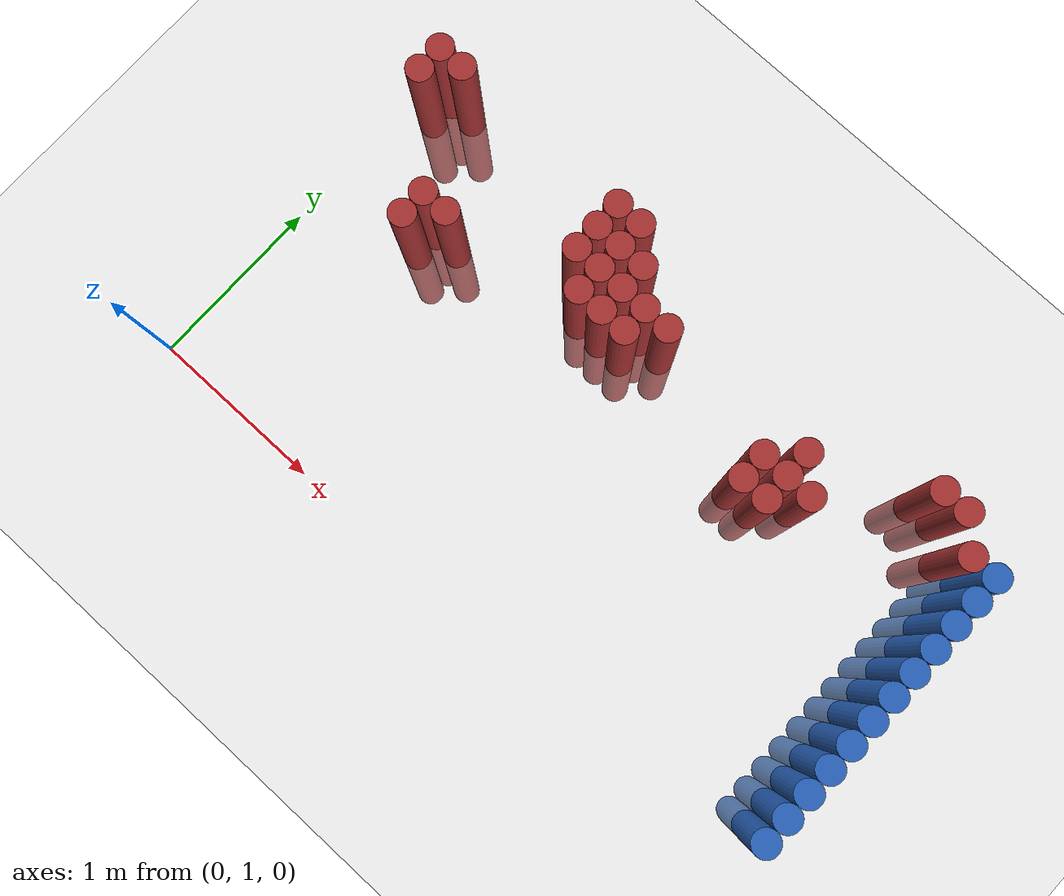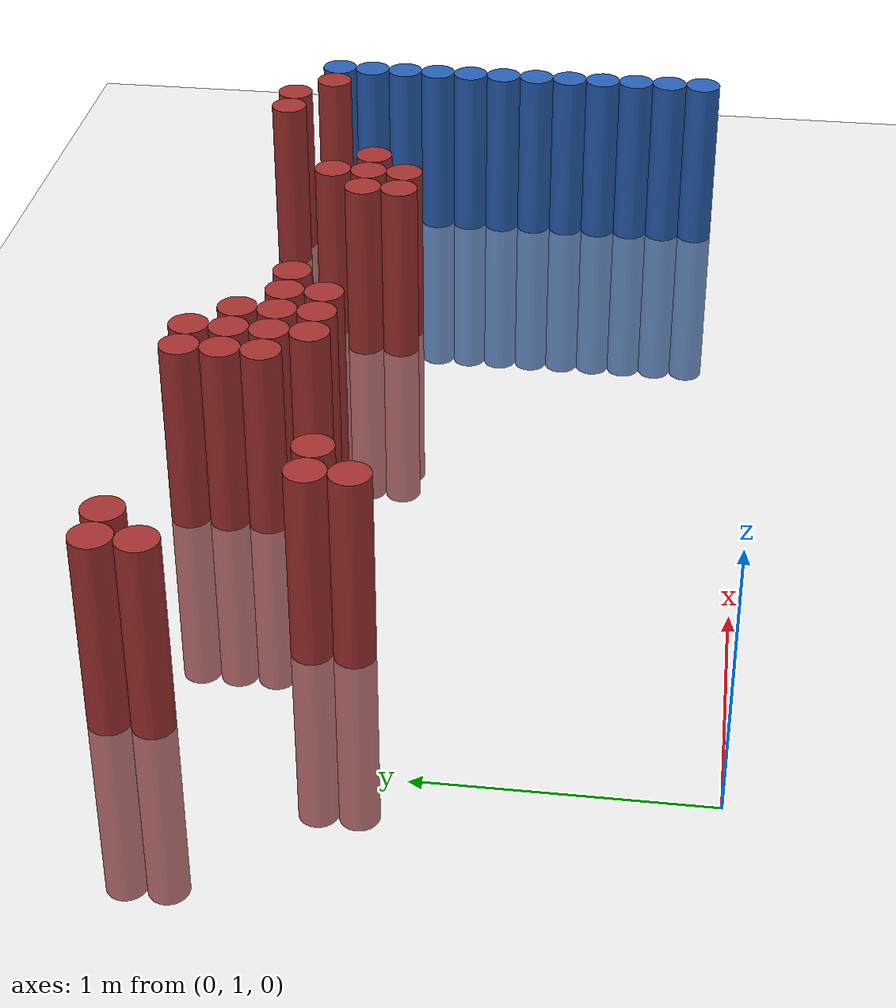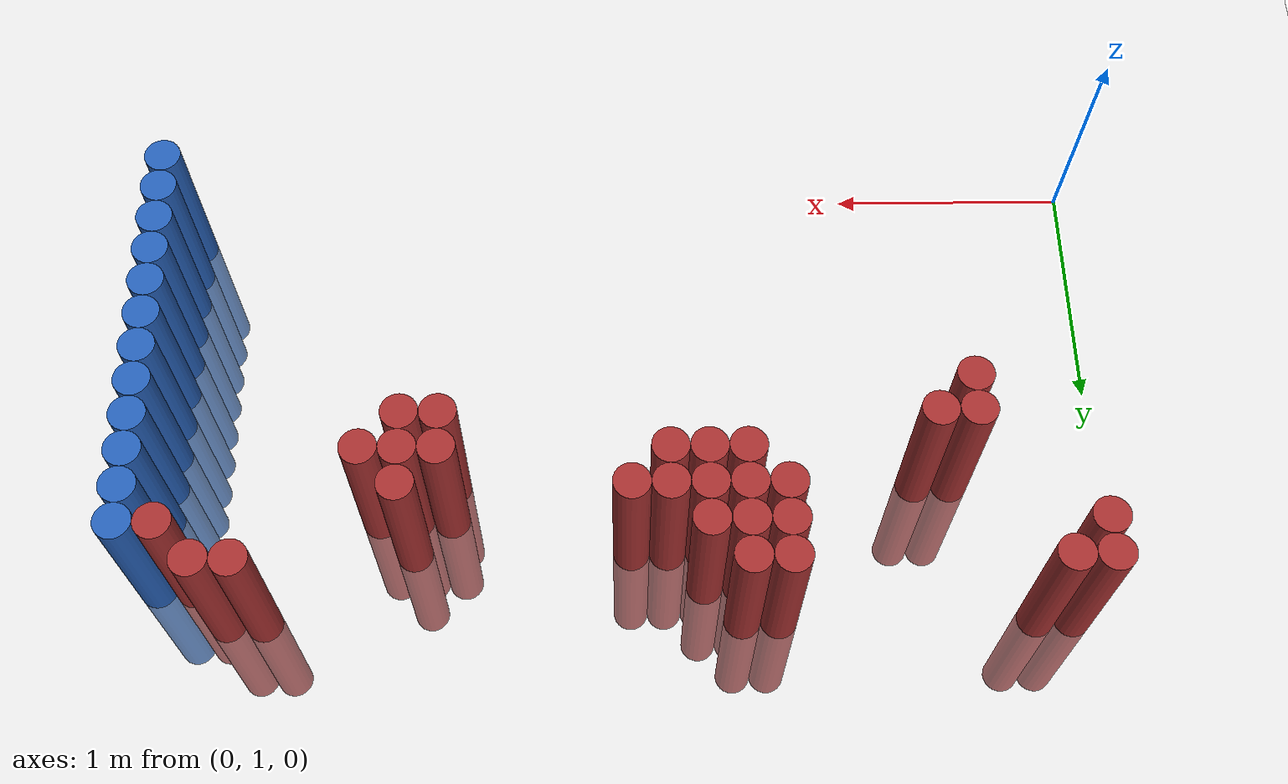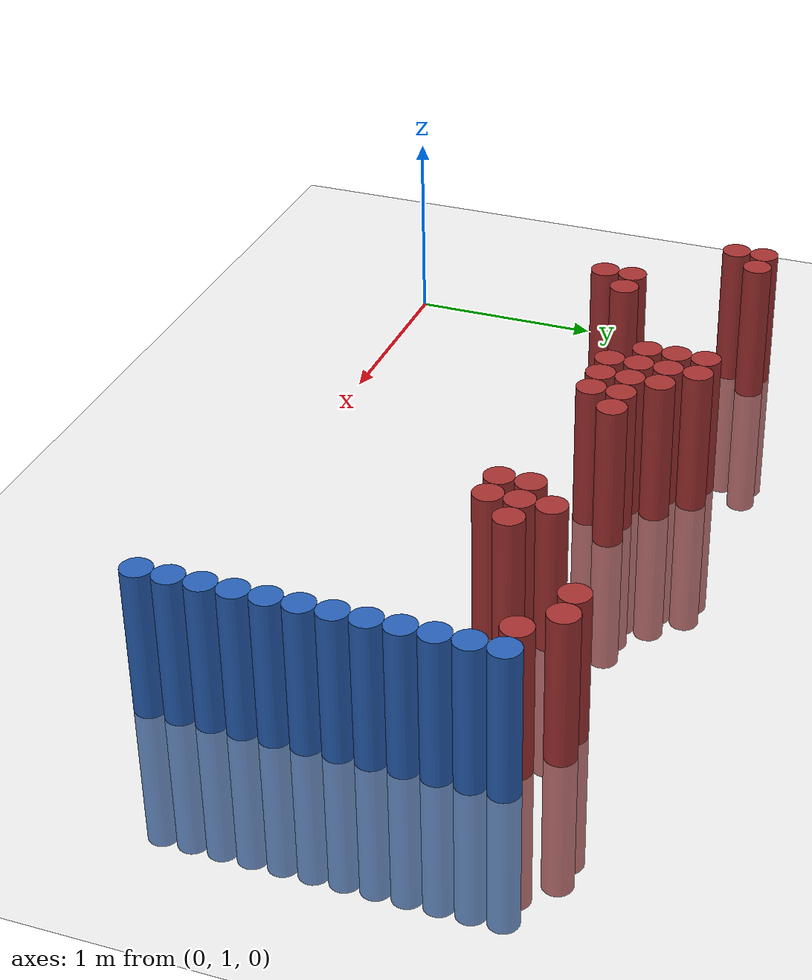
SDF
<sdf version="1.6">
 <world name="default">
  <model name="ground_plane">
   <static>1</static>
   <link name="link">
    <collision name="collision">
     <geometry><plane><normal>0 0 1</normal><size>100 100</size></plane></geometry>
     <surface><friction><ode><mu>100</mu><mu2>50</mu2></ode></friction></surface>
    </collision>
    <visual name="visual">
     <cast_shadows>0</cast_shadows>
     <geometry><plane><normal>0 0 1</normal><size>100 100</size></plane></geometry>
     <material>
      <script><uri>file://media/materials/scripts/gazebo.material</uri><name>Gazebo/Grey</name></script>
     </material>
    </visual>
   </link>
  </model>
  <model name="unit_cylinder_132">
   <static>1</static>
   <pose>3.925000 1.375000 0.000000 0.000000 0.000000 0.000000</pose>
   <link name="link">
    <inertial>
     <mass>1</mass>
     <inertia><ixx>0.145833</ixx><ixy>0</ixy><ixz>0</ixz><iyy>0.145833</iyy><iyz>0</iyz><izz>0.125</izz></inertia>
    </inertial>
    <collision name="collision">
     <geometry><cylinder><radius>0.075000</radius><length>1.5</length></cylinder></geometry>
    </collision>
    <visual name="visual">
     <geometry><cylinder><radius>0.075000</radius><length>1.5</length></cylinder></geometry>
     <material>
      <ambient>0.152000 0.379000 0.720000 1</ambient>
      <diffuse>0.152000 0.379000 0.720000 1</diffuse>
     </material>
     <material>
      <script><name>Gazebo/Grey</name><uri>file://media/materials/scripts/gazebo.material</uri></script>
     </material>
    </visual>
   </link>
  </model>
  <model name="unit_cylinder_134">
   <static>1</static>
   <pose>3.925000 1.525000 0.000000 0.000000 0.000000 0.000000</pose>
   <link name="link">
    <inertial>
     <mass>1</mass>
     <inertia><ixx>0.145833</ixx><ixy>0</ixy><ixz>0</ixz><iyy>0.145833</iyy><iyz>0</iyz><izz>0.125</izz></inertia>
    </inertial>
    <collision name="collision">
     <geometry><cylinder><radius>0.075000</radius><length>1.5</length></cylinder></geometry>
    </collision>
    <visual name="visual">
     <geometry><cylinder><radius>0.075000</radius><length>1.5</length></cylinder></geometry>
     <material>
      <ambient>0.152000 0.379000 0.720000 1</ambient>
      <diffuse>0.152000 0.379000 0.720000 1</diffuse>
     </material>
     <material>
      <script><name>Gazebo/Grey</name><uri>file://media/materials/scripts/gazebo.material</uri></script>
     </material>
    </visual>
   </link>
  </model>
  <model name="unit_cylinder_136">
   <static>1</static>
   <pose>3.925000 1.675000 0.000000 0.000000 0.000000 0.000000</pose>
   <link name="link">
    <inertial>
     <mass>1</mass>
     <inertia><ixx>0.145833</ixx><ixy>0</ixy><ixz>0</ixz><iyy>0.145833</iyy><iyz>0</iyz><izz>0.125</izz></inertia>
    </inertial>
    <collision name="collision">
     <geometry><cylinder><radius>0.075000</radius><length>1.5</length></cylinder></geometry>
    </collision>
    <visual name="visual">
     <geometry><cylinder><radius>0.075000</radius><length>1.5</length></cylinder></geometry>
     <material>
      <ambient>0.152000 0.379000 0.720000 1</ambient>
      <diffuse>0.152000 0.379000 0.720000 1</diffuse>
     </material>
     <material>
      <script><name>Gazebo/Grey</name><uri>file://media/materials/scripts/gazebo.material</uri></script>
     </material>
    </visual>
   </link>
  </model>
  <model name="unit_cylinder_138">
   <static>1</static>
   <pose>3.925000 1.825000 0.000000 0.000000 0.000000 0.000000</pose>
   <link name="link">
    <inertial>
     <mass>1</mass>
     <inertia><ixx>0.145833</ixx><ixy>0</ixy><ixz>0</ixz><iyy>0.145833</iyy><iyz>0</iyz><izz>0.125</izz></inertia>
    </inertial>
    <collision name="collision">
     <geometry><cylinder><radius>0.075000</radius><length>1.5</length></cylinder></geometry>
    </collision>
    <visual name="visual">
     <geometry><cylinder><radius>0.075000</radius><length>1.5</length></cylinder></geometry>
     <material>
      <ambient>0.152000 0.379000 0.720000 1</ambient>
      <diffuse>0.152000 0.379000 0.720000 1</diffuse>
     </material>
     <material>
      <script><name>Gazebo/Grey</name><uri>file://media/materials/scripts/gazebo.material</uri></script>
     </material>
    </visual>
   </link>
  </model>
  <model name="unit_cylinder_140">
   <static>1</static>
   <pose>3.925000 1.975000 0.000000 0.000000 0.000000 0.000000</pose>
   <link name="link">
    <inertial>
     <mass>1</mass>
     <inertia><ixx>0.145833</ixx><ixy>0</ixy><ixz>0</ixz><iyy>0.145833</iyy><iyz>0</iyz><izz>0.125</izz></inertia>
    </inertial>
    <collision name="collision">
     <geometry><cylinder><radius>0.075000</radius><length>1.5</length></cylinder></geometry>
    </collision>
    <visual name="visual">
     <geometry><cylinder><radius>0.075000</radius><length>1.5</length></cylinder></geometry>
     <material>
      <ambient>0.152000 0.379000 0.720000 1</ambient>
      <diffuse>0.152000 0.379000 0.720000 1</diffuse>
     </material>
     <material>
      <script><name>Gazebo/Grey</name><uri>file://media/materials/scripts/gazebo.material</uri></script>
     </material>
    </visual>
   </link>
  </model>
  <model name="unit_cylinder_142">
   <static>1</static>
   <pose>3.925000 2.125000 0.000000 0.000000 0.000000 0.000000</pose>
   <link name="link">
    <inertial>
     <mass>1</mass>
     <inertia><ixx>0.145833</ixx><ixy>0</ixy><ixz>0</ixz><iyy>0.145833</iyy><iyz>0</iyz><izz>0.125</izz></inertia>
    </inertial>
    <collision name="collision">
     <geometry><cylinder><radius>0.075000</radius><length>1.5</length></cylinder></geometry>
    </collision>
    <visual name="visual">
     <geometry><cylinder><radius>0.075000</radius><length>1.5</length></cylinder></geometry>
     <material>
      <ambient>0.152000 0.379000 0.720000 1</ambient>
      <diffuse>0.152000 0.379000 0.720000 1</diffuse>
     </material>
     <material>
      <script><name>Gazebo/Grey</name><uri>file://media/materials/scripts/gazebo.material</uri></script>
     </material>
    </visual>
   </link>
  </model>
  <model name="unit_cylinder_144">
   <static>1</static>
   <pose>3.925000 2.275000 0.000000 0.000000 0.000000 0.000000</pose>
   <link name="link">
    <inertial>
     <mass>1</mass>
     <inertia><ixx>0.145833</ixx><ixy>0</ixy><ixz>0</ixz><iyy>0.145833</iyy><iyz>0</iyz><izz>0.125</izz></inertia>
    </inertial>
    <collision name="collision">
     <geometry><cylinder><radius>0.075000</radius><length>1.5</length></cylinder></geometry>
    </collision>
    <visual name="visual">
     <geometry><cylinder><radius>0.075000</radius><length>1.5</length></cylinder></geometry>
     <material>
      <ambient>0.152000 0.379000 0.720000 1</ambient>
      <diffuse>0.152000 0.379000 0.720000 1</diffuse>
     </material>
     <material>
      <script><name>Gazebo/Grey</name><uri>file://media/materials/scripts/gazebo.material</uri></script>
     </material>
    </visual>
   </link>
  </model>
  <model name="unit_cylinder_146">
   <static>1</static>
   <pose>3.925000 2.425000 0.000000 0.000000 0.000000 0.000000</pose>
   <link name="link">
    <inertial>
     <mass>1</mass>
     <inertia><ixx>0.145833</ixx><ixy>0</ixy><ixz>0</ixz><iyy>0.145833</iyy><iyz>0</iyz><izz>0.125</izz></inertia>
    </inertial>
    <collision name="collision">
     <geometry><cylinder><radius>0.075000</radius><length>1.5</length></cylinder></geometry>
    </collision>
    <visual name="visual">
     <geometry><cylinder><radius>0.075000</radius><length>1.5</length></cylinder></geometry>
     <material>
      <ambient>0.152000 0.379000 0.720000 1</ambient>
      <diffuse>0.152000 0.379000 0.720000 1</diffuse>
     </material>
     <material>
      <script><name>Gazebo/Grey</name><uri>file://media/materials/scripts/gazebo.material</uri></script>
     </material>
    </visual>
   </link>
  </model>
  <model name="unit_cylinder_148">
   <static>1</static>
   <pose>3.925000 2.575000 0.000000 0.000000 0.000000 0.000000</pose>
   <link name="link">
    <inertial>
     <mass>1</mass>
     <inertia><ixx>0.145833</ixx><ixy>0</ixy><ixz>0</ixz><iyy>0.145833</iyy><iyz>0</iyz><izz>0.125</izz></inertia>
    </inertial>
    <collision name="collision">
     <geometry><cylinder><radius>0.075000</radius><length>1.5</length></cylinder></geometry>
    </collision>
    <visual name="visual">
     <geometry><cylinder><radius>0.075000</radius><length>1.5</length></cylinder></geometry>
     <material>
      <ambient>0.152000 0.379000 0.720000 1</ambient>
      <diffuse>0.152000 0.379000 0.720000 1</diffuse>
     </material>
     <material>
      <script><name>Gazebo/Grey</name><uri>file://media/materials/scripts/gazebo.material</uri></script>
     </material>
    </visual>
   </link>
  </model>
  <model name="unit_cylinder_150">
   <static>1</static>
   <pose>3.925000 2.725000 0.000000 0.000000 0.000000 0.000000</pose>
   <link name="link">
    <inertial>
     <mass>1</mass>
     <inertia><ixx>0.145833</ixx><ixy>0</ixy><ixz>0</ixz><iyy>0.145833</iyy><iyz>0</iyz><izz>0.125</izz></inertia>
    </inertial>
    <collision name="collision">
     <geometry><cylinder><radius>0.075000</radius><length>1.5</length></cylinder></geometry>
    </collision>
    <visual name="visual">
     <geometry><cylinder><radius>0.075000</radius><length>1.5</length></cylinder></geometry>
     <material>
      <ambient>0.152000 0.379000 0.720000 1</ambient>
      <diffuse>0.152000 0.379000 0.720000 1</diffuse>
     </material>
     <material>
      <script><name>Gazebo/Grey</name><uri>file://media/materials/scripts/gazebo.material</uri></script>
     </material>
    </visual>
   </link>
  </model>
  <model name="unit_cylinder_152">
   <static>1</static>
   <pose>3.925000 2.875000 0.000000 0.000000 0.000000 0.000000</pose>
   <link name="link">
    <inertial>
     <mass>1</mass>
     <inertia><ixx>0.145833</ixx><ixy>0</ixy><ixz>0</ixz><iyy>0.145833</iyy><iyz>0</iyz><izz>0.125</izz></inertia>
    </inertial>
    <collision name="collision">
     <geometry><cylinder><radius>0.075000</radius><length>1.5</length></cylinder></geometry>
    </collision>
    <visual name="visual">
     <geometry><cylinder><radius>0.075000</radius><length>1.5</length></cylinder></geometry>
     <material>
      <ambient>0.152000 0.379000 0.720000 1</ambient>
      <diffuse>0.152000 0.379000 0.720000 1</diffuse>
     </material>
     <material>
      <script><name>Gazebo/Grey</name><uri>file://media/materials/scripts/gazebo.material</uri></script>
     </material>
    </visual>
   </link>
  </model>
  <model name="unit_cylinder_352">
   <static>1</static>
   <pose>0.175000 2.875000 0.000000 0.000000 0.000000 0.000000</pose>
   <link name="link">
    <inertial>
     <mass>1</mass>
     <inertia><ixx>0.145833</ixx><ixy>0</ixy><ixz>0</ixz><iyy>0.145833</iyy><iyz>0</iyz><izz>0.125</izz></inertia>
    </inertial>
    <collision name="collision">
     <geometry><cylinder><radius>0.075000</radius><length>1.5</length></cylinder></geometry>
    </collision>
    <visual name="visual">
     <geometry><cylinder><radius>0.075000</radius><length>1.5</length></cylinder></geometry>
     <material>
      <ambient>0.648000 0.192000 0.192000 1</ambient>
      <diffuse>0.648000 0.192000 0.192000 1</diffuse>
     </material>
     <material>
      <script><name>Gazebo/Grey</name><uri>file://media/materials/scripts/gazebo.material</uri></script>
     </material>
    </visual>
   </link>
  </model>
  <model name="unit_cylinder_353">
   <static>1</static>
   <pose>0.175000 3.025000 0.000000 0.000000 0.000000 0.000000</pose>
   <link name="link">
    <inertial>
     <mass>1</mass>
     <inertia><ixx>0.145833</ixx><ixy>0</ixy><ixz>0</ixz><iyy>0.145833</iyy><iyz>0</iyz><izz>0.125</izz></inertia>
    </inertial>
    <collision name="collision">
     <geometry><cylinder><radius>0.075000</radius><length>1.5</length></cylinder></geometry>
    </collision>
    <visual name="visual">
     <geometry><cylinder><radius>0.075000</radius><length>1.5</length></cylinder></geometry>
     <material>
      <ambient>0.648000 0.192000 0.192000 1</ambient>
      <diffuse>0.648000 0.192000 0.192000 1</diffuse>
     </material>
     <material>
      <script><name>Gazebo/Grey</name><uri>file://media/materials/scripts/gazebo.material</uri></script>
     </material>
    </visual>
   </link>
  </model>
  <model name="unit_cylinder_358">
   <static>1</static>
   <pose>0.325000 3.025000 0.000000 0.000000 0.000000 0.000000</pose>
   <link name="link">
    <inertial>
     <mass>1</mass>
     <inertia><ixx>0.145833</ixx><ixy>0</ixy><ixz>0</ixz><iyy>0.145833</iyy><iyz>0</iyz><izz>0.125</izz></inertia>
    </inertial>
    <collision name="collision">
     <geometry><cylinder><radius>0.075000</radius><length>1.5</length></cylinder></geometry>
    </collision>
    <visual name="visual">
     <geometry><cylinder><radius>0.075000</radius><length>1.5</length></cylinder></geometry>
     <material>
      <ambient>0.648000 0.192000 0.192000 1</ambient>
      <diffuse>0.648000 0.192000 0.192000 1</diffuse>
     </material>
     <material>
      <script><name>Gazebo/Grey</name><uri>file://media/materials/scripts/gazebo.material</uri></script>
     </material>
    </visual>
   </link>
  </model>
  <model name="unit_cylinder_364">
   <static>1</static>
   <pose>0.625000 2.275000 0.000000 0.000000 0.000000 0.000000</pose>
   <link name="link">
    <inertial>
     <mass>1</mass>
     <inertia><ixx>0.145833</ixx><ixy>0</ixy><ixz>0</ixz><iyy>0.145833</iyy><iyz>0</iyz><izz>0.125</izz></inertia>
    </inertial>
    <collision name="collision">
     <geometry><cylinder><radius>0.075000</radius><length>1.5</length></cylinder></geometry>
    </collision>
    <visual name="visual">
     <geometry><cylinder><radius>0.075000</radius><length>1.5</length></cylinder></geometry>
     <material>
      <ambient>0.648000 0.192000 0.192000 1</ambient>
      <diffuse>0.648000 0.192000 0.192000 1</diffuse>
     </material>
     <material>
      <script><name>Gazebo/Grey</name><uri>file://media/materials/scripts/gazebo.material</uri></script>
     </material>
    </visual>
   </link>
  </model>
  <model name="unit_cylinder_365">
   <static>1</static>
   <pose>0.625000 2.425000 0.000000 0.000000 0.000000 0.000000</pose>
   <link name="link">
    <inertial>
     <mass>1</mass>
     <inertia><ixx>0.145833</ixx><ixy>0</ixy><ixz>0</ixz><iyy>0.145833</iyy><iyz>0</iyz><izz>0.125</izz></inertia>
    </inertial>
    <collision name="collision">
     <geometry><cylinder><radius>0.075000</radius><length>1.5</length></cylinder></geometry>
    </collision>
    <visual name="visual">
     <geometry><cylinder><radius>0.075000</radius><length>1.5</length></cylinder></geometry>
     <material>
      <ambient>0.648000 0.192000 0.192000 1</ambient>
      <diffuse>0.648000 0.192000 0.192000 1</diffuse>
     </material>
     <material>
      <script><name>Gazebo/Grey</name><uri>file://media/materials/scripts/gazebo.material</uri></script>
     </material>
    </visual>
   </link>
  </model>
  <model name="unit_cylinder_366">
   <static>1</static>
   <pose>0.775000 2.425000 0.000000 0.000000 0.000000 0.000000</pose>
   <link name="link">
    <inertial>
     <mass>1</mass>
     <inertia><ixx>0.145833</ixx><ixy>0</ixy><ixz>0</ixz><iyy>0.145833</iyy><iyz>0</iyz><izz>0.125</izz></inertia>
    </inertial>
    <collision name="collision">
     <geometry><cylinder><radius>0.075000</radius><length>1.5</length></cylinder></geometry>
    </collision>
    <visual name="visual">
     <geometry><cylinder><radius>0.075000</radius><length>1.5</length></cylinder></geometry>
     <material>
      <ambient>0.648000 0.192000 0.192000 1</ambient>
      <diffuse>0.648000 0.192000 0.192000 1</diffuse>
     </material>
     <material>
      <script><name>Gazebo/Grey</name><uri>file://media/materials/scripts/gazebo.material</uri></script>
     </material>
    </visual>
   </link>
  </model>
  <model name="unit_cylinder_377">
   <static>1</static>
   <pose>1.375000 2.725000 0.000000 0.000000 0.000000 0.000000</pose>
   <link name="link">
    <inertial>
     <mass>1</mass>
     <inertia><ixx>0.145833</ixx><ixy>0</ixy><ixz>0</ixz><iyy>0.145833</iyy><iyz>0</iyz><izz>0.125</izz></inertia>
    </inertial>
    <collision name="collision">
     <geometry><cylinder><radius>0.075000</radius><length>1.5</length></cylinder></geometry>
    </collision>
    <visual name="visual">
     <geometry><cylinder><radius>0.075000</radius><length>1.5</length></cylinder></geometry>
     <material>
      <ambient>0.648000 0.192000 0.192000 1</ambient>
      <diffuse>0.648000 0.192000 0.192000 1</diffuse>
     </material>
     <material>
      <script><name>Gazebo/Grey</name><uri>file://media/materials/scripts/gazebo.material</uri></script>
     </material>
    </visual>
   </link>
  </model>
  <model name="unit_cylinder_378">
   <static>1</static>
   <pose>1.375000 2.875000 0.000000 0.000000 0.000000 0.000000</pose>
   <link name="link">
    <inertial>
     <mass>1</mass>
     <inertia><ixx>0.145833</ixx><ixy>0</ixy><ixz>0</ixz><iyy>0.145833</iyy><iyz>0</iyz><izz>0.125</izz></inertia>
    </inertial>
    <collision name="collision">
     <geometry><cylinder><radius>0.075000</radius><length>1.5</length></cylinder></geometry>
    </collision>
    <visual name="visual">
     <geometry><cylinder><radius>0.075000</radius><length>1.5</length></cylinder></geometry>
     <material>
      <ambient>0.648000 0.192000 0.192000 1</ambient>
      <diffuse>0.648000 0.192000 0.192000 1</diffuse>
     </material>
     <material>
      <script><name>Gazebo/Grey</name><uri>file://media/materials/scripts/gazebo.material</uri></script>
     </material>
    </visual>
   </link>
  </model>
  <model name="unit_cylinder_379">
   <static>1</static>
   <pose>1.375000 3.025000 0.000000 0.000000 0.000000 0.000000</pose>
   <link name="link">
    <inertial>
     <mass>1</mass>
     <inertia><ixx>0.145833</ixx><ixy>0</ixy><ixz>0</ixz><iyy>0.145833</iyy><iyz>0</iyz><izz>0.125</izz></inertia>
    </inertial>
    <collision name="collision">
     <geometry><cylinder><radius>0.075000</radius><length>1.5</length></cylinder></geometry>
    </collision>
    <visual name="visual">
     <geometry><cylinder><radius>0.075000</radius><length>1.5</length></cylinder></geometry>
     <material>
      <ambient>0.648000 0.192000 0.192000 1</ambient>
      <diffuse>0.648000 0.192000 0.192000 1</diffuse>
     </material>
     <material>
      <script><name>Gazebo/Grey</name><uri>file://media/materials/scripts/gazebo.material</uri></script>
     </material>
    </visual>
   </link>
  </model>
  <model name="unit_cylinder_382">
   <static>1</static>
   <pose>1.525000 2.575000 0.000000 0.000000 0.000000 0.000000</pose>
   <link name="link">
    <inertial>
     <mass>1</mass>
     <inertia><ixx>0.145833</ixx><ixy>0</ixy><ixz>0</ixz><iyy>0.145833</iyy><iyz>0</iyz><izz>0.125</izz></inertia>
    </inertial>
    <collision name="collision">
     <geometry><cylinder><radius>0.075000</radius><length>1.5</length></cylinder></geometry>
    </collision>
    <visual name="visual">
     <geometry><cylinder><radius>0.075000</radius><length>1.5</length></cylinder></geometry>
     <material>
      <ambient>0.648000 0.192000 0.192000 1</ambient>
      <diffuse>0.648000 0.192000 0.192000 1</diffuse>
     </material>
     <material>
      <script><name>Gazebo/Grey</name><uri>file://media/materials/scripts/gazebo.material</uri></script>
     </material>
    </visual>
   </link>
  </model>
  <model name="unit_cylinder_383">
   <static>1</static>
   <pose>1.525000 2.725000 0.000000 0.000000 0.000000 0.000000</pose>
   <link name="link">
    <inertial>
     <mass>1</mass>
     <inertia><ixx>0.145833</ixx><ixy>0</ixy><ixz>0</ixz><iyy>0.145833</iyy><iyz>0</iyz><izz>0.125</izz></inertia>
    </inertial>
    <collision name="collision">
     <geometry><cylinder><radius>0.075000</radius><length>1.5</length></cylinder></geometry>
    </collision>
    <visual name="visual">
     <geometry><cylinder><radius>0.075000</radius><length>1.5</length></cylinder></geometry>
     <material>
      <ambient>0.648000 0.192000 0.192000 1</ambient>
      <diffuse>0.648000 0.192000 0.192000 1</diffuse>
     </material>
     <material>
      <script><name>Gazebo/Grey</name><uri>file://media/materials/scripts/gazebo.material</uri></script>
     </material>
    </visual>
   </link>
  </model>
  <model name="unit_cylinder_384">
   <static>1</static>
   <pose>1.525000 2.875000 0.000000 0.000000 0.000000 0.000000</pose>
   <link name="link">
    <inertial>
     <mass>1</mass>
     <inertia><ixx>0.145833</ixx><ixy>0</ixy><ixz>0</ixz><iyy>0.145833</iyy><iyz>0</iyz><izz>0.125</izz></inertia>
    </inertial>
    <collision name="collision">
     <geometry><cylinder><radius>0.075000</radius><length>1.5</length></cylinder></geometry>
    </collision>
    <visual name="visual">
     <geometry><cylinder><radius>0.075000</radius><length>1.5</length></cylinder></geometry>
     <material>
      <ambient>0.648000 0.192000 0.192000 1</ambient>
      <diffuse>0.648000 0.192000 0.192000 1</diffuse>
     </material>
     <material>
      <script><name>Gazebo/Grey</name><uri>file://media/materials/scripts/gazebo.material</uri></script>
     </material>
    </visual>
   </link>
  </model>
  <model name="unit_cylinder_385">
   <static>1</static>
   <pose>1.525000 3.025000 0.000000 0.000000 0.000000 0.000000</pose>
   <link name="link">
    <inertial>
     <mass>1</mass>
     <inertia><ixx>0.145833</ixx><ixy>0</ixy><ixz>0</ixz><iyy>0.145833</iyy><iyz>0</iyz><izz>0.125</izz></inertia>
    </inertial>
    <collision name="collision">
     <geometry><cylinder><radius>0.075000</radius><length>1.5</length></cylinder></geometry>
    </collision>
    <visual name="visual">
     <geometry><cylinder><radius>0.075000</radius><length>1.5</length></cylinder></geometry>
     <material>
      <ambient>0.648000 0.192000 0.192000 1</ambient>
      <diffuse>0.648000 0.192000 0.192000 1</diffuse>
     </material>
     <material>
      <script><name>Gazebo/Grey</name><uri>file://media/materials/scripts/gazebo.material</uri></script>
     </material>
    </visual>
   </link>
  </model>
  <model name="unit_cylinder_386">
   <static>1</static>
   <pose>1.675000 2.575000 0.000000 0.000000 0.000000 0.000000</pose>
   <link name="link">
    <inertial>
     <mass>1</mass>
     <inertia><ixx>0.145833</ixx><ixy>0</ixy><ixz>0</ixz><iyy>0.145833</iyy><iyz>0</iyz><izz>0.125</izz></inertia>
    </inertial>
    <collision name="collision">
     <geometry><cylinder><radius>0.075000</radius><length>1.5</length></cylinder></geometry>
    </collision>
    <visual name="visual">
     <geometry><cylinder><radius>0.075000</radius><length>1.5</length></cylinder></geometry>
     <material>
      <ambient>0.648000 0.192000 0.192000 1</ambient>
      <diffuse>0.648000 0.192000 0.192000 1</diffuse>
     </material>
     <material>
      <script><name>Gazebo/Grey</name><uri>file://media/materials/scripts/gazebo.material</uri></script>
     </material>
    </visual>
   </link>
  </model>
  <model name="unit_cylinder_387">
   <static>1</static>
   <pose>1.675000 2.725000 0.000000 0.000000 0.000000 0.000000</pose>
   <link name="link">
    <inertial>
     <mass>1</mass>
     <inertia><ixx>0.145833</ixx><ixy>0</ixy><ixz>0</ixz><iyy>0.145833</iyy><iyz>0</iyz><izz>0.125</izz></inertia>
    </inertial>
    <collision name="collision">
     <geometry><cylinder><radius>0.075000</radius><length>1.5</length></cylinder></geometry>
    </collision>
    <visual name="visual">
     <geometry><cylinder><radius>0.075000</radius><length>1.5</length></cylinder></geometry>
     <material>
      <ambient>0.648000 0.192000 0.192000 1</ambient>
      <diffuse>0.648000 0.192000 0.192000 1</diffuse>
     </material>
     <material>
      <script><name>Gazebo/Grey</name><uri>file://media/materials/scripts/gazebo.material</uri></script>
     </material>
    </visual>
   </link>
  </model>
  <model name="unit_cylinder_388">
   <static>1</static>
   <pose>1.675000 2.875000 0.000000 0.000000 0.000000 0.000000</pose>
   <link name="link">
    <inertial>
     <mass>1</mass>
     <inertia><ixx>0.145833</ixx><ixy>0</ixy><ixz>0</ixz><iyy>0.145833</iyy><iyz>0</iyz><izz>0.125</izz></inertia>
    </inertial>
    <collision name="collision">
     <geometry><cylinder><radius>0.075000</radius><length>1.5</length></cylinder></geometry>
    </collision>
    <visual name="visual">
     <geometry><cylinder><radius>0.075000</radius><length>1.5</length></cylinder></geometry>
     <material>
      <ambient>0.648000 0.192000 0.192000 1</ambient>
      <diffuse>0.648000 0.192000 0.192000 1</diffuse>
     </material>
     <material>
      <script><name>Gazebo/Grey</name><uri>file://media/materials/scripts/gazebo.material</uri></script>
     </material>
    </visual>
   </link>
  </model>
  <model name="unit_cylinder_397">
   <static>1</static>
   <pose>1.825000 2.575000 0.000000 0.000000 0.000000 0.000000</pose>
   <link name="link">
    <inertial>
     <mass>1</mass>
     <inertia><ixx>0.145833</ixx><ixy>0</ixy><ixz>0</ixz><iyy>0.145833</iyy><iyz>0</iyz><izz>0.125</izz></inertia>
    </inertial>
    <collision name="collision">
     <geometry><cylinder><radius>0.075000</radius><length>1.5</length></cylinder></geometry>
    </collision>
    <visual name="visual">
     <geometry><cylinder><radius>0.075000</radius><length>1.5</length></cylinder></geometry>
     <material>
      <ambient>0.648000 0.192000 0.192000 1</ambient>
      <diffuse>0.648000 0.192000 0.192000 1</diffuse>
     </material>
     <material>
      <script><name>Gazebo/Grey</name><uri>file://media/materials/scripts/gazebo.material</uri></script>
     </material>
    </visual>
   </link>
  </model>
  <model name="unit_cylinder_398">
   <static>1</static>
   <pose>1.825000 2.725000 0.000000 0.000000 0.000000 0.000000</pose>
   <link name="link">
    <inertial>
     <mass>1</mass>
     <inertia><ixx>0.145833</ixx><ixy>0</ixy><ixz>0</ixz><iyy>0.145833</iyy><iyz>0</iyz><izz>0.125</izz></inertia>
    </inertial>
    <collision name="collision">
     <geometry><cylinder><radius>0.075000</radius><length>1.5</length></cylinder></geometry>
    </collision>
    <visual name="visual">
     <geometry><cylinder><radius>0.075000</radius><length>1.5</length></cylinder></geometry>
     <material>
      <ambient>0.648000 0.192000 0.192000 1</ambient>
      <diffuse>0.648000 0.192000 0.192000 1</diffuse>
     </material>
     <material>
      <script><name>Gazebo/Grey</name><uri>file://media/materials/scripts/gazebo.material</uri></script>
     </material>
    </visual>
   </link>
  </model>
  <model name="unit_cylinder_408">
   <static>1</static>
   <pose>1.975000 2.725000 0.000000 0.000000 0.000000 0.000000</pose>
   <link name="link">
    <inertial>
     <mass>1</mass>
     <inertia><ixx>0.145833</ixx><ixy>0</ixy><ixz>0</ixz><iyy>0.145833</iyy><iyz>0</iyz><izz>0.125</izz></inertia>
    </inertial>
    <collision name="collision">
     <geometry><cylinder><radius>0.075000</radius><length>1.5</length></cylinder></geometry>
    </collision>
    <visual name="visual">
     <geometry><cylinder><radius>0.075000</radius><length>1.5</length></cylinder></geometry>
     <material>
      <ambient>0.648000 0.192000 0.192000 1</ambient>
      <diffuse>0.648000 0.192000 0.192000 1</diffuse>
     </material>
     <material>
      <script><name>Gazebo/Grey</name><uri>file://media/materials/scripts/gazebo.material</uri></script>
     </material>
    </visual>
   </link>
  </model>
  <model name="unit_cylinder_425">
   <static>1</static>
   <pose>2.725000 2.425000 0.000000 0.000000 0.000000 0.000000</pose>
   <link name="link">
    <inertial>
     <mass>1</mass>
     <inertia><ixx>0.145833</ixx><ixy>0</ixy><ixz>0</ixz><iyy>0.145833</iyy><iyz>0</iyz><izz>0.125</izz></inertia>
    </inertial>
    <collision name="collision">
     <geometry><cylinder><radius>0.075000</radius><length>1.5</length></cylinder></geometry>
    </collision>
    <visual name="visual">
     <geometry><cylinder><radius>0.075000</radius><length>1.5</length></cylinder></geometry>
     <material>
      <ambient>0.648000 0.192000 0.192000 1</ambient>
      <diffuse>0.648000 0.192000 0.192000 1</diffuse>
     </material>
     <material>
      <script><name>Gazebo/Grey</name><uri>file://media/materials/scripts/gazebo.material</uri></script>
     </material>
    </visual>
   </link>
  </model>
  <model name="unit_cylinder_426">
   <static>1</static>
   <pose>2.725000 2.575000 0.000000 0.000000 0.000000 0.000000</pose>
   <link name="link">
    <inertial>
     <mass>1</mass>
     <inertia><ixx>0.145833</ixx><ixy>0</ixy><ixz>0</ixz><iyy>0.145833</iyy><iyz>0</iyz><izz>0.125</izz></inertia>
    </inertial>
    <collision name="collision">
     <geometry><cylinder><radius>0.075000</radius><length>1.5</length></cylinder></geometry>
    </collision>
    <visual name="visual">
     <geometry><cylinder><radius>0.075000</radius><length>1.5</length></cylinder></geometry>
     <material>
      <ambient>0.648000 0.192000 0.192000 1</ambient>
      <diffuse>0.648000 0.192000 0.192000 1</diffuse>
     </material>
     <material>
      <script><name>Gazebo/Grey</name><uri>file://media/materials/scripts/gazebo.material</uri></script>
     </material>
    </visual>
   </link>
  </model>
  <model name="unit_cylinder_429">
   <static>1</static>
   <pose>2.875000 2.425000 0.000000 0.000000 0.000000 0.000000</pose>
   <link name="link">
    <inertial>
     <mass>1</mass>
     <inertia><ixx>0.145833</ixx><ixy>0</ixy><ixz>0</ixz><iyy>0.145833</iyy><iyz>0</iyz><izz>0.125</izz></inertia>
    </inertial>
    <collision name="collision">
     <geometry><cylinder><radius>0.075000</radius><length>1.5</length></cylinder></geometry>
    </collision>
    <visual name="visual">
     <geometry><cylinder><radius>0.075000</radius><length>1.5</length></cylinder></geometry>
     <material>
      <ambient>0.648000 0.192000 0.192000 1</ambient>
      <diffuse>0.648000 0.192000 0.192000 1</diffuse>
     </material>
     <material>
      <script><name>Gazebo/Grey</name><uri>file://media/materials/scripts/gazebo.material</uri></script>
     </material>
    </visual>
   </link>
  </model>
  <model name="unit_cylinder_430">
   <static>1</static>
   <pose>2.875000 2.575000 0.000000 0.000000 0.000000 0.000000</pose>
   <link name="link">
    <inertial>
     <mass>1</mass>
     <inertia><ixx>0.145833</ixx><ixy>0</ixy><ixz>0</ixz><iyy>0.145833</iyy><iyz>0</iyz><izz>0.125</izz></inertia>
    </inertial>
    <collision name="collision">
     <geometry><cylinder><radius>0.075000</radius><length>1.5</length></cylinder></geometry>
    </collision>
    <visual name="visual">
     <geometry><cylinder><radius>0.075000</radius><length>1.5</length></cylinder></geometry>
     <material>
      <ambient>0.648000 0.192000 0.192000 1</ambient>
      <diffuse>0.648000 0.192000 0.192000 1</diffuse>
     </material>
     <material>
      <script><name>Gazebo/Grey</name><uri>file://media/materials/scripts/gazebo.material</uri></script>
     </material>
    </visual>
   </link>
  </model>
  <model name="unit_cylinder_431">
   <static>1</static>
   <pose>2.875000 2.725000 0.000000 0.000000 0.000000 0.000000</pose>
   <link name="link">
    <inertial>
     <mass>1</mass>
     <inertia><ixx>0.145833</ixx><ixy>0</ixy><ixz>0</ixz><iyy>0.145833</iyy><iyz>0</iyz><izz>0.125</izz></inertia>
    </inertial>
    <collision name="collision">
     <geometry><cylinder><radius>0.075000</radius><length>1.5</length></cylinder></geometry>
    </collision>
    <visual name="visual">
     <geometry><cylinder><radius>0.075000</radius><length>1.5</length></cylinder></geometry>
     <material>
      <ambient>0.648000 0.192000 0.192000 1</ambient>
      <diffuse>0.648000 0.192000 0.192000 1</diffuse>
     </material>
     <material>
      <script><name>Gazebo/Grey</name><uri>file://media/materials/scripts/gazebo.material</uri></script>
     </material>
    </visual>
   </link>
  </model>
  <model name="unit_cylinder_436">
   <static>1</static>
   <pose>3.025000 2.575000 0.000000 0.000000 0.000000 0.000000</pose>
   <link name="link">
    <inertial>
     <mass>1</mass>
     <inertia><ixx>0.145833</ixx><ixy>0</ixy><ixz>0</ixz><iyy>0.145833</iyy><iyz>0</iyz><izz>0.125</izz></inertia>
    </inertial>
    <collision name="collision">
     <geometry><cylinder><radius>0.075000</radius><length>1.5</length></cylinder></geometry>
    </collision>
    <visual name="visual">
     <geometry><cylinder><radius>0.075000</radius><length>1.5</length></cylinder></geometry>
     <material>
      <ambient>0.648000 0.192000 0.192000 1</ambient>
      <diffuse>0.648000 0.192000 0.192000 1</diffuse>
     </material>
     <material>
      <script><name>Gazebo/Grey</name><uri>file://media/materials/scripts/gazebo.material</uri></script>
     </material>
    </visual>
   </link>
  </model>
  <model name="unit_cylinder_442">
   <static>1</static>
   <pose>3.475000 3.025000 0.000000 0.000000 0.000000 0.000000</pose>
   <link name="link">
    <inertial>
     <mass>1</mass>
     <inertia><ixx>0.145833</ixx><ixy>0</ixy><ixz>0</ixz><iyy>0.145833</iyy><iyz>0</iyz><izz>0.125</izz></inertia>
    </inertial>
    <collision name="collision">
     <geometry><cylinder><radius>0.075000</radius><length>1.5</length></cylinder></geometry>
    </collision>
    <visual name="visual">
     <geometry><cylinder><radius>0.075000</radius><length>1.5</length></cylinder></geometry>
     <material>
      <ambient>0.648000 0.192000 0.192000 1</ambient>
      <diffuse>0.648000 0.192000 0.192000 1</diffuse>
     </material>
     <material>
      <script><name>Gazebo/Grey</name><uri>file://media/materials/scripts/gazebo.material</uri></script>
     </material>
    </visual>
   </link>
  </model>
  <model name="unit_cylinder_447">
   <static>1</static>
   <pose>3.625000 3.025000 0.000000 0.000000 0.000000 0.000000</pose>
   <link name="link">
    <inertial>
     <mass>1</mass>
     <inertia><ixx>0.145833</ixx><ixy>0</ixy><ixz>0</ixz><iyy>0.145833</iyy><iyz>0</iyz><izz>0.125</izz></inertia>
    </inertial>
    <collision name="collision">
     <geometry><cylinder><radius>0.075000</radius><length>1.5</length></cylinder></geometry>
    </collision>
    <visual name="visual">
     <geometry><cylinder><radius>0.075000</radius><length>1.5</length></cylinder></geometry>
     <material>
      <ambient>0.648000 0.192000 0.192000 1</ambient>
      <diffuse>0.648000 0.192000 0.192000 1</diffuse>
     </material>
     <material>
      <script><name>Gazebo/Grey</name><uri>file://media/materials/scripts/gazebo.material</uri></script>
     </material>
    </visual>
   </link>
  </model>
  <model name="unit_cylinder_453">
   <static>1</static>
   <pose>3.775000 2.875000 0.000000 0.000000 0.000000 0.000000</pose>
   <link name="link">
    <inertial>
     <mass>1</mass>
     <inertia><ixx>0.145833</ixx><ixy>0</ixy><ixz>0</ixz><iyy>0.145833</iyy><iyz>0</iyz><izz>0.125</izz></inertia>
    </inertial>
    <collision name="collision">
     <geometry><cylinder><radius>0.075000</radius><length>1.5</length></cylinder></geometry>
    </collision>
    <visual name="visual">
     <geometry><cylinder><radius>0.075000</radius><length>1.5</length></cylinder></geometry>
     <material>
      <ambient>0.648000 0.192000 0.192000 1</ambient>
      <diffuse>0.648000 0.192000 0.192000 1</diffuse>
     </material>
     <material>
      <script><name>Gazebo/Grey</name><uri>file://media/materials/scripts/gazebo.material</uri></script>
     </material>
    </visual>
   </link>
  </model>
  <model name="unit_cylinder_481">
   <static>1</static>
   <pose>3.925000 1.225000 0.000000 0.000000 0.000000 0.000000</pose>
   <link name="link">
    <inertial>
     <mass>1</mass>
     <inertia><ixx>0.145833</ixx><ixy>0</ixy><ixz>0</ixz><iyy>0.145833</iyy><iyz>0</iyz><izz>0.125</izz></inertia>
    </inertial>
    <collision name="collision">
     <geometry><cylinder><radius>0.075000</radius><length>1.5</length></cylinder></geometry>
    </collision>
    <visual name="visual">
     <geometry><cylinder><radius>0.075000</radius><length>1.5</length></cylinder></geometry>
     <material>
      <ambient>0.152000 0.379000 0.720000 1</ambient>
      <diffuse>0.152000 0.379000 0.720000 1</diffuse>
     </material>
     <material>
      <script><name>Gazebo/Grey</name><uri>file://media/materials/scripts/gazebo.material</uri></script>
     </material>
    </visual>
   </link>
  </model>
  <model name="unit_cylinder_482">
   <static>1</static>
   <pose>3.925000 1.375000 0.000000 0.000000 0.000000 0.000000</pose>
   <link name="link">
    <inertial>
     <mass>1</mass>
     <inertia><ixx>0.145833</ixx><ixy>0</ixy><ixz>0</ixz><iyy>0.145833</iyy><iyz>0</iyz><izz>0.125</izz></inertia>
    </inertial>
    <collision name="collision">
     <geometry><cylinder><radius>0.075000</radius><length>1.5</length></cylinder></geometry>
    </collision>
    <visual name="visual">
     <geometry><cylinder><radius>0.075000</radius><length>1.5</length></cylinder></geometry>
     <material>
      <ambient>0.152000 0.379000 0.720000 1</ambient>
      <diffuse>0.152000 0.379000 0.720000 1</diffuse>
     </material>
     <material>
      <script><name>Gazebo/Grey</name><uri>file://media/materials/scripts/gazebo.material</uri></script>
     </material>
    </visual>
   </link>
  </model>
  <model name="unit_cylinder_483">
   <static>1</static>
   <pose>3.925000 1.525000 0.000000 0.000000 0.000000 0.000000</pose>
   <link name="link">
    <inertial>
     <mass>1</mass>
     <inertia><ixx>0.145833</ixx><ixy>0</ixy><ixz>0</ixz><iyy>0.145833</iyy><iyz>0</iyz><izz>0.125</izz></inertia>
    </inertial>
    <collision name="collision">
     <geometry><cylinder><radius>0.075000</radius><length>1.5</length></cylinder></geometry>
    </collision>
    <visual name="visual">
     <geometry><cylinder><radius>0.075000</radius><length>1.5</length></cylinder></geometry>
     <material>
      <ambient>0.152000 0.379000 0.720000 1</ambient>
      <diffuse>0.152000 0.379000 0.720000 1</diffuse>
     </material>
     <material>
      <script><name>Gazebo/Grey</name><uri>file://media/materials/scripts/gazebo.material</uri></script>
     </material>
    </visual>
   </link>
  </model>
  <model name="unit_cylinder_484">
   <static>1</static>
   <pose>3.925000 1.675000 0.000000 0.000000 0.000000 0.000000</pose>
   <link name="link">
    <inertial>
     <mass>1</mass>
     <inertia><ixx>0.145833</ixx><ixy>0</ixy><ixz>0</ixz><iyy>0.145833</iyy><iyz>0</iyz><izz>0.125</izz></inertia>
    </inertial>
    <collision name="collision">
     <geometry><cylinder><radius>0.075000</radius><length>1.5</length></cylinder></geometry>
    </collision>
    <visual name="visual">
     <geometry><cylinder><radius>0.075000</radius><length>1.5</length></cylinder></geometry>
     <material>
      <ambient>0.152000 0.379000 0.720000 1</ambient>
      <diffuse>0.152000 0.379000 0.720000 1</diffuse>
     </material>
     <material>
      <script><name>Gazebo/Grey</name><uri>file://media/materials/scripts/gazebo.material</uri></script>
     </material>
    </visual>
   </link>
  </model>
  <model name="unit_cylinder_485">
   <static>1</static>
   <pose>3.925000 1.825000 0.000000 0.000000 0.000000 0.000000</pose>
   <link name="link">
    <inertial>
     <mass>1</mass>
     <inertia><ixx>0.145833</ixx><ixy>0</ixy><ixz>0</ixz><iyy>0.145833</iyy><iyz>0</iyz><izz>0.125</izz></inertia>
    </inertial>
    <collision name="collision">
     <geometry><cylinder><radius>0.075000</radius><length>1.5</length></cylinder></geometry>
    </collision>
    <visual name="visual">
     <geometry><cylinder><radius>0.075000</radius><length>1.5</length></cylinder></geometry>
     <material>
      <ambient>0.152000 0.379000 0.720000 1</ambient>
      <diffuse>0.152000 0.379000 0.720000 1</diffuse>
     </material>
     <material>
      <script><name>Gazebo/Grey</name><uri>file://media/materials/scripts/gazebo.material</uri></script>
     </material>
    </visual>
   </link>
  </model>
  <model name="unit_cylinder_486">
   <static>1</static>
   <pose>3.925000 1.975000 0.000000 0.000000 0.000000 0.000000</pose>
   <link name="link">
    <inertial>
     <mass>1</mass>
     <inertia><ixx>0.145833</ixx><ixy>0</ixy><ixz>0</ixz><iyy>0.145833</iyy><iyz>0</iyz><izz>0.125</izz></inertia>
    </inertial>
    <collision name="collision">
     <geometry><cylinder><radius>0.075000</radius><length>1.5</length></cylinder></geometry>
    </collision>
    <visual name="visual">
     <geometry><cylinder><radius>0.075000</radius><length>1.5</length></cylinder></geometry>
     <material>
      <ambient>0.152000 0.379000 0.720000 1</ambient>
      <diffuse>0.152000 0.379000 0.720000 1</diffuse>
     </material>
     <material>
      <script><name>Gazebo/Grey</name><uri>file://media/materials/scripts/gazebo.material</uri></script>
     </material>
    </visual>
   </link>
  </model>
  <model name="unit_cylinder_487">
   <static>1</static>
   <pose>3.925000 2.125000 0.000000 0.000000 0.000000 0.000000</pose>
   <link name="link">
    <inertial>
     <mass>1</mass>
     <inertia><ixx>0.145833</ixx><ixy>0</ixy><ixz>0</ixz><iyy>0.145833</iyy><iyz>0</iyz><izz>0.125</izz></inertia>
    </inertial>
    <collision name="collision">
     <geometry><cylinder><radius>0.075000</radius><length>1.5</length></cylinder></geometry>
    </collision>
    <visual name="visual">
     <geometry><cylinder><radius>0.075000</radius><length>1.5</length></cylinder></geometry>
     <material>
      <ambient>0.152000 0.379000 0.720000 1</ambient>
      <diffuse>0.152000 0.379000 0.720000 1</diffuse>
     </material>
     <material>
      <script><name>Gazebo/Grey</name><uri>file://media/materials/scripts/gazebo.material</uri></script>
     </material>
    </visual>
   </link>
  </model>
  <model name="unit_cylinder_488">
   <static>1</static>
   <pose>3.925000 2.275000 0.000000 0.000000 0.000000 0.000000</pose>
   <link name="link">
    <inertial>
     <mass>1</mass>
     <inertia><ixx>0.145833</ixx><ixy>0</ixy><ixz>0</ixz><iyy>0.145833</iyy><iyz>0</iyz><izz>0.125</izz></inertia>
    </inertial>
    <collision name="collision">
     <geometry><cylinder><radius>0.075000</radius><length>1.5</length></cylinder></geometry>
    </collision>
    <visual name="visual">
     <geometry><cylinder><radius>0.075000</radius><length>1.5</length></cylinder></geometry>
     <material>
      <ambient>0.152000 0.379000 0.720000 1</ambient>
      <diffuse>0.152000 0.379000 0.720000 1</diffuse>
     </material>
     <material>
      <script><name>Gazebo/Grey</name><uri>file://media/materials/scripts/gazebo.material</uri></script>
     </material>
    </visual>
   </link>
  </model>
  <model name="unit_cylinder_489">
   <static>1</static>
   <pose>3.925000 2.425000 0.000000 0.000000 0.000000 0.000000</pose>
   <link name="link">
    <inertial>
     <mass>1</mass>
     <inertia><ixx>0.145833</ixx><ixy>0</ixy><ixz>0</ixz><iyy>0.145833</iyy><iyz>0</iyz><izz>0.125</izz></inertia>
    </inertial>
    <collision name="collision">
     <geometry><cylinder><radius>0.075000</radius><length>1.5</length></cylinder></geometry>
    </collision>
    <visual name="visual">
     <geometry><cylinder><radius>0.075000</radius><length>1.5</length></cylinder></geometry>
     <material>
      <ambient>0.152000 0.379000 0.720000 1</ambient>
      <diffuse>0.152000 0.379000 0.720000 1</diffuse>
     </material>
     <material>
      <script><name>Gazebo/Grey</name><uri>file://media/materials/scripts/gazebo.material</uri></script>
     </material>
    </visual>
   </link>
  </model>
  <model name="unit_cylinder_490">
   <static>1</static>
   <pose>3.925000 2.575000 0.000000 0.000000 0.000000 0.000000</pose>
   <link name="link">
    <inertial>
     <mass>1</mass>
     <inertia><ixx>0.145833</ixx><ixy>0</ixy><ixz>0</ixz><iyy>0.145833</iyy><iyz>0</iyz><izz>0.125</izz></inertia>
    </inertial>
    <collision name="collision">
     <geometry><cylinder><radius>0.075000</radius><length>1.5</length></cylinder></geometry>
    </collision>
    <visual name="visual">
     <geometry><cylinder><radius>0.075000</radius><length>1.5</length></cylinder></geometry>
     <material>
      <ambient>0.152000 0.379000 0.720000 1</ambient>
      <diffuse>0.152000 0.379000 0.720000 1</diffuse>
     </material>
     <material>
      <script><name>Gazebo/Grey</name><uri>file://media/materials/scripts/gazebo.material</uri></script>
     </material>
    </visual>
   </link>
  </model>
  <model name="unit_cylinder_491">
   <static>1</static>
   <pose>3.925000 2.725000 0.000000 0.000000 0.000000 0.000000</pose>
   <link name="link">
    <inertial>
     <mass>1</mass>
     <inertia><ixx>0.145833</ixx><ixy>0</ixy><ixz>0</ixz><iyy>0.145833</iyy><iyz>0</iyz><izz>0.125</izz></inertia>
    </inertial>
    <collision name="collision">
     <geometry><cylinder><radius>0.075000</radius><length>1.5</length></cylinder></geometry>
    </collision>
    <visual name="visual">
     <geometry><cylinder><radius>0.075000</radius><length>1.5</length></cylinder></geometry>
     <material>
      <ambient>0.152000 0.379000 0.720000 1</ambient>
      <diffuse>0.152000 0.379000 0.720000 1</diffuse>
     </material>
     <material>
      <script><name>Gazebo/Grey</name><uri>file://media/materials/scripts/gazebo.material</uri></script>
     </material>
    </visual>
   </link>
  </model>
  <model name="unit_cylinder_492">
   <static>1</static>
   <pose>3.925000 2.875000 0.000000 0.000000 0.000000 0.000000</pose>
   <link name="link">
    <inertial>
     <mass>1</mass>
     <inertia><ixx>0.145833</ixx><ixy>0</ixy><ixz>0</ixz><iyy>0.145833</iyy><iyz>0</iyz><izz>0.125</izz></inertia>
    </inertial>
    <collision name="collision">
     <geometry><cylinder><radius>0.075000</radius><length>1.5</length></cylinder></geometry>
    </collision>
    <visual name="visual">
     <geometry><cylinder><radius>0.075000</radius><length>1.5</length></cylinder></geometry>
     <material>
      <ambient>0.152000 0.379000 0.720000 1</ambient>
      <diffuse>0.152000 0.379000 0.720000 1</diffuse>
     </material>
     <material>
      <script><name>Gazebo/Grey</name><uri>file://media/materials/scripts/gazebo.material</uri></script>
     </material>
    </visual>
   </link>
  </model>
 </world>
</sdf>
